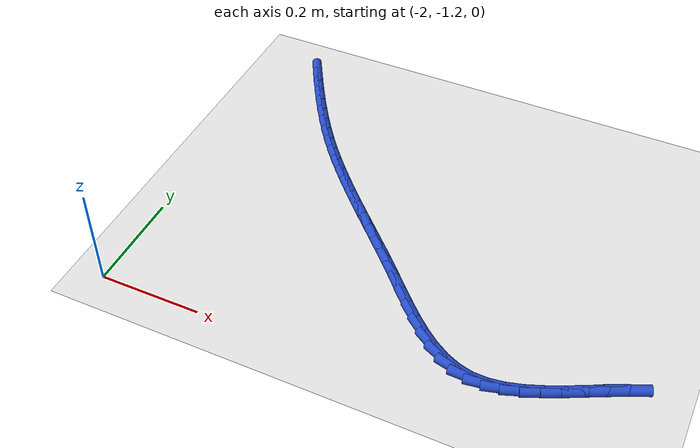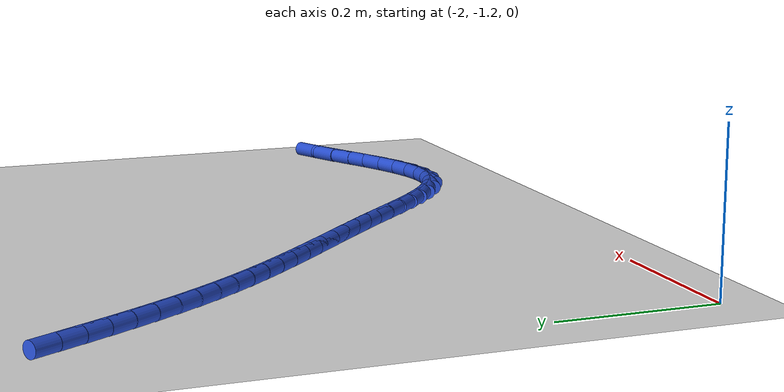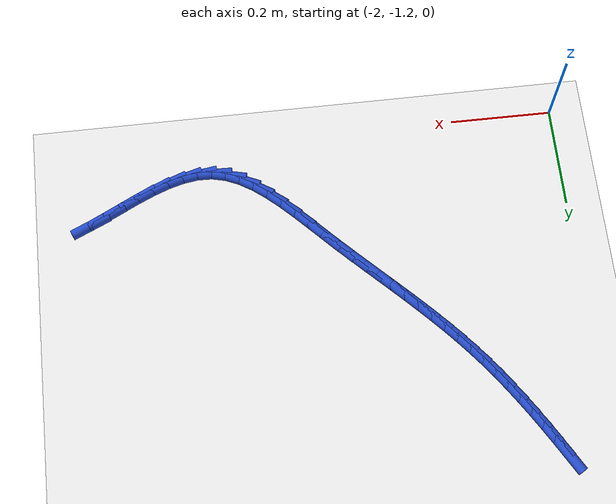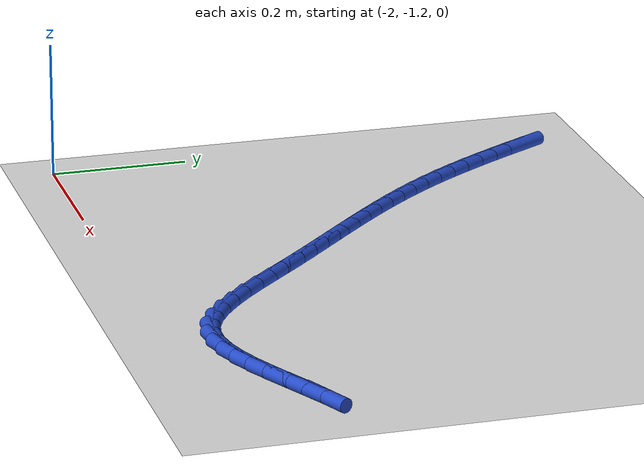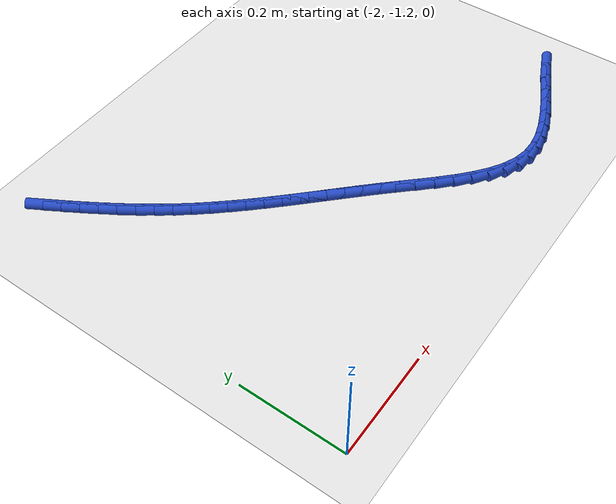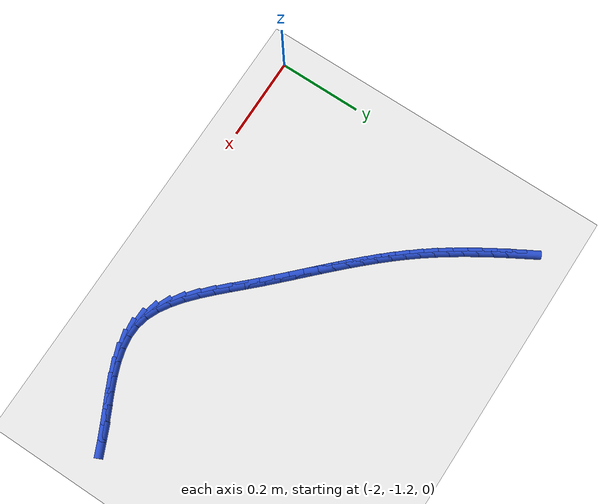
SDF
<sdf version="1.6">
 <world name="default">
  <model name="ground_plane">
   <static>1</static>
   <link name="link">
    <collision name="collision">
     <geometry><plane><normal>0 0 1</normal><size>100 100</size></plane></geometry>
     <surface><friction><ode><mu>100</mu><mu2>50</mu2></ode></friction></surface>
    </collision>
    <visual name="visual">
     <cast_shadows>0</cast_shadows>
     <geometry><plane><normal>0 0 1</normal><size>100 100</size></plane></geometry>
     <material>
      <script><uri>file://media/materials/scripts/gazebo.material</uri><name>Gazebo/WhiteGlow</name></script>
     </material>
    </visual>
   </link>
  </model>
  <model name="line">
   <link name="link_124">
    <pose>-1.9135966309874082 -0.502934036705215 0.01 0 1.57 -1.0475070568985723</pose>
    <collision name="collision">
     <geometry><cylinder><radius>0.01</radius><length>0.08</length></cylinder></geometry>
    </collision>
    <visual name="visual">
     <material>
      <script><name>Gazebo/Blue</name><uri>file://media/materials/scripts/gazebo.material</uri></script>
     </material>
     <geometry><cylinder><radius>0.01</radius><length>0.08</length></cylinder></geometry>
    </visual>
   </link>
   <link name="link_125">
    <pose>-1.8972765736320398 -0.5312214206681143 0.01 0 1.57 -1.0345594447354984</pose>
    <collision name="collision">
     <geometry><cylinder><radius>0.01</radius><length>0.08</length></cylinder></geometry>
    </collision>
    <visual name="visual">
     <material>
      <script><name>Gazebo/Blue</name><uri>file://media/materials/scripts/gazebo.material</uri></script>
     </material>
     <geometry><cylinder><radius>0.01</radius><length>0.08</length></cylinder></geometry>
    </visual>
   </link>
   <link name="link_126">
    <pose>-1.8804833890050574 -0.5594772751705258 0.01 0 1.57 -1.0190836249302626</pose>
    <collision name="collision">
     <geometry><cylinder><radius>0.01</radius><length>0.08</length></cylinder></geometry>
    </collision>
    <visual name="visual">
     <material>
      <script><name>Gazebo/Blue</name><uri>file://media/materials/scripts/gazebo.material</uri></script>
     </material>
     <geometry><cylinder><radius>0.01</radius><length>0.08</length></cylinder></geometry>
    </visual>
   </link>
   <link name="link_127">
    <pose>-1.863198707217481 -0.587561251308733 0.01 0 1.57 -1.0009563373993409</pose>
    <collision name="collision">
     <geometry><cylinder><radius>0.01</radius><length>0.08</length></cylinder></geometry>
    </collision>
    <visual name="visual">
     <material>
      <script><name>Gazebo/Blue</name><uri>file://media/materials/scripts/gazebo.material</uri></script>
     </material>
     <geometry><cylinder><radius>0.01</radius><length>0.08</length></cylinder></geometry>
    </visual>
   </link>
   <link name="link_128">
    <pose>-1.8454041583803287 -0.6153330001790173 0.01 0 1.57 -0.9800112402686961</pose>
    <collision name="collision">
     <geometry><cylinder><radius>0.01</radius><length>0.08</length></cylinder></geometry>
    </collision>
    <visual name="visual">
     <material>
      <script><name>Gazebo/Blue</name><uri>file://media/materials/scripts/gazebo.material</uri></script>
     </material>
     <geometry><cylinder><radius>0.01</radius><length>0.08</length></cylinder></geometry>
    </visual>
   </link>
   <link name="link_129">
    <pose>-1.827081372604622 -0.6426521728776615 0.01 0 1.57 -0.9560383326005625</pose>
    <collision name="collision">
     <geometry><cylinder><radius>0.01</radius><length>0.08</length></cylinder></geometry>
    </collision>
    <visual name="visual">
     <material>
      <script><name>Gazebo/Blue</name><uri>file://media/materials/scripts/gazebo.material</uri></script>
     </material>
     <geometry><cylinder><radius>0.01</radius><length>0.08</length></cylinder></geometry>
    </visual>
   </link>
   <link name="link_130">
    <pose>-1.80821198000138 -0.669378420500948 0.01 0 1.57 -0.9287830841033715</pose>
    <collision name="collision">
     <geometry><cylinder><radius>0.01</radius><length>0.08</length></cylinder></geometry>
    </collision>
    <visual name="visual">
     <material>
      <script><name>Gazebo/Blue</name><uri>file://media/materials/scripts/gazebo.material</uri></script>
     </material>
     <geometry><cylinder><radius>0.01</radius><length>0.08</length></cylinder></geometry>
    </visual>
   </link>
   <link name="link_131">
    <pose>-1.7887776106816224 -0.6953713941451586 0.01 0 1.57 -0.8989156136470994</pose>
    <collision name="collision">
     <geometry><cylinder><radius>0.01</radius><length>0.08</length></cylinder></geometry>
    </collision>
    <visual name="visual">
     <material>
      <script><name>Gazebo/Blue</name><uri>file://media/materials/scripts/gazebo.material</uri></script>
     </material>
     <geometry><cylinder><radius>0.01</radius><length>0.08</length></cylinder></geometry>
    </visual>
   </link>
   <link name="link_132">
    <pose>-1.768766905410925 -0.7205319675906243 0.01 0 1.57 -0.8708459982777562</pose>
    <collision name="collision">
     <geometry><cylinder><radius>0.01</radius><length>0.08</length></cylinder></geometry>
    </collision>
    <visual name="visual">
     <material>
      <script><name>Gazebo/Blue</name><uri>file://media/materials/scripts/gazebo.material</uri></script>
     </material>
     <geometry><cylinder><radius>0.01</radius><length>0.08</length></cylinder></geometry>
    </visual>
   </link>
   <link name="link_133">
    <pose>-1.74820086511964 -0.7449512925493137 0.01 0 1.57 -0.8461723928128537</pose>
    <collision name="collision">
     <geometry><cylinder><radius>0.01</radius><length>0.08</length></cylinder></geometry>
    </collision>
    <visual name="visual">
     <material>
      <script><name>Gazebo/Blue</name><uri>file://media/materials/scripts/gazebo.material</uri></script>
     </material>
     <geometry><cylinder><radius>0.01</radius><length>0.08</length></cylinder></geometry>
    </visual>
   </link>
   <link name="link_134">
    <pose>-1.7271098213490412 -0.7687753847723375 0.01 0 1.57 -0.8251712590265017</pose>
    <collision name="collision">
     <geometry><cylinder><radius>0.01</radius><length>0.08</length></cylinder></geometry>
    </collision>
    <visual name="visual">
     <material>
      <script><name>Gazebo/Blue</name><uri>file://media/materials/scripts/gazebo.material</uri></script>
     </material>
     <geometry><cylinder><radius>0.01</radius><length>0.08</length></cylinder></geometry>
    </visual>
   </link>
   <link name="link_135">
    <pose>-1.7055241065197801 -0.7921502651815617 0.01 0 1.57 -0.8080360637903273</pose>
    <collision name="collision">
     <geometry><cylinder><radius>0.01</radius><length>0.08</length></cylinder></geometry>
    </collision>
    <visual name="visual">
     <material>
      <script><name>Gazebo/Blue</name><uri>file://media/materials/scripts/gazebo.material</uri></script>
     </material>
     <geometry><cylinder><radius>0.01</radius><length>0.08</length></cylinder></geometry>
    </visual>
   </link>
   <link name="link_136">
    <pose>-1.6834740530525085 -0.8152219546988534 0.01 0 1.57 -0.7948796707596245</pose>
    <collision name="collision">
     <geometry><cylinder><radius>0.01</radius><length>0.08</length></cylinder></geometry>
    </collision>
    <visual name="visual">
     <material>
      <script><name>Gazebo/Blue</name><uri>file://media/materials/scripts/gazebo.material</uri></script>
     </material>
     <geometry><cylinder><radius>0.01</radius><length>0.08</length></cylinder></geometry>
    </visual>
   </link>
   <link name="link_137">
    <pose>-1.6609899933678802 -0.8381364742460793 0.01 0 1.57 -0.7857396493133958</pose>
    <collision name="collision">
     <geometry><cylinder><radius>0.01</radius><length>0.08</length></cylinder></geometry>
    </collision>
    <visual name="visual">
     <material>
      <script><name>Gazebo/Blue</name><uri>file://media/materials/scripts/gazebo.material</uri></script>
     </material>
     <geometry><cylinder><radius>0.01</radius><length>0.08</length></cylinder></geometry>
    </visual>
   </link>
   <link name="link_138">
    <pose>-1.638102259886546 -0.8610398447451063 0.01 0 1.57 -0.7805853329389117</pose>
    <collision name="collision">
     <geometry><cylinder><radius>0.01</radius><length>0.08</length></cylinder></geometry>
    </collision>
    <visual name="visual">
     <material>
      <script><name>Gazebo/Blue</name><uri>file://media/materials/scripts/gazebo.material</uri></script>
     </material>
     <geometry><cylinder><radius>0.01</radius><length>0.08</length></cylinder></geometry>
    </visual>
   </link>
   <link name="link_139">
    <pose>-1.6148411850291602 -0.8840780871178004 0.01 0 1.57 -0.779325580396458</pose>
    <collision name="collision">
     <geometry><cylinder><radius>0.01</radius><length>0.08</length></cylinder></geometry>
    </collision>
    <visual name="visual">
     <material>
      <script><name>Gazebo/Blue</name><uri>file://media/materials/scripts/gazebo.material</uri></script>
     </material>
     <geometry><cylinder><radius>0.01</radius><length>0.08</length></cylinder></geometry>
    </visual>
   </link>
   <link name="link_140">
    <pose>-1.591237101216374 -0.9073972222860284 0.01 0 1.57 -0.7818165295264585</pose>
    <collision name="collision">
     <geometry><cylinder><radius>0.01</radius><length>0.08</length></cylinder></geometry>
    </collision>
    <visual name="visual">
     <material>
      <script><name>Gazebo/Blue</name><uri>file://media/materials/scripts/gazebo.material</uri></script>
     </material>
     <geometry><cylinder><radius>0.01</radius><length>0.08</length></cylinder></geometry>
    </visual>
   </link>
   <link name="link_141">
    <pose>-1.5673203408688403 -0.9311432711716574 0.01 0 1.57 -0.7878689701479262</pose>
    <collision name="collision">
     <geometry><cylinder><radius>0.01</radius><length>0.08</length></cylinder></geometry>
    </collision>
    <visual name="visual">
     <material>
      <script><name>Gazebo/Blue</name><uri>file://media/materials/scripts/gazebo.material</uri></script>
     </material>
     <geometry><cylinder><radius>0.01</radius><length>0.08</length></cylinder></geometry>
    </visual>
   </link>
   <link name="link_142">
    <pose>-1.543121236407211 -0.9554622546965534 0.01 0 1.57 -0.7972552382055903</pose>
    <collision name="collision">
     <geometry><cylinder><radius>0.01</radius><length>0.08</length></cylinder></geometry>
    </collision>
    <visual name="visual">
     <material>
      <script><name>Gazebo/Blue</name><uri>file://media/materials/scripts/gazebo.material</uri></script>
     </material>
     <geometry><cylinder><radius>0.01</radius><length>0.08</length></cylinder></geometry>
    </visual>
   </link>
   <link name="link_143">
    <pose>-1.518670120252139 -0.9805001937825835 0.01 0 1.57 -0.8063526784655833</pose>
    <collision name="collision">
     <geometry><cylinder><radius>0.01</radius><length>0.08</length></cylinder></geometry>
    </collision>
    <visual name="visual">
     <material>
      <script><name>Gazebo/Blue</name><uri>file://media/materials/scripts/gazebo.material</uri></script>
     </material>
     <geometry><cylinder><radius>0.01</radius><length>0.08</length></cylinder></geometry>
    </visual>
   </link>
   <link name="link_144">
    <pose>-1.4939833365621904 -1.006243878172441 0.01 0 1.57 -0.8004874402331852</pose>
    <collision name="collision">
     <geometry><cylinder><radius>0.01</radius><length>0.08</length></cylinder></geometry>
    </collision>
    <visual name="visual">
     <material>
      <script><name>Gazebo/Blue</name><uri>file://media/materials/scripts/gazebo.material</uri></script>
     </material>
     <geometry><cylinder><radius>0.01</radius><length>0.08</length></cylinder></geometry>
    </visual>
   </link>
   <link name="link_145">
    <pose>-1.469015451047204 -1.0319768611969138 0.01 0 1.57 -0.7754287948697701</pose>
    <collision name="collision">
     <geometry><cylinder><radius>0.01</radius><length>0.08</length></cylinder></geometry>
    </collision>
    <visual name="visual">
     <material>
      <script><name>Gazebo/Blue</name><uri>file://media/materials/scripts/gazebo.material</uri></script>
     </material>
     <geometry><cylinder><radius>0.01</radius><length>0.08</length></cylinder></geometry>
    </visual>
   </link>
   <link name="link_146">
    <pose>-1.4437039799580225 -1.0567886187922066 0.01 0 1.57 -0.7292421271719759</pose>
    <collision name="collision">
     <geometry><cylinder><radius>0.01</radius><length>0.08</length></cylinder></geometry>
    </collision>
    <visual name="visual">
     <material>
      <script><name>Gazebo/Blue</name><uri>file://media/materials/scripts/gazebo.material</uri></script>
     </material>
     <geometry><cylinder><radius>0.01</radius><length>0.08</length></cylinder></geometry>
    </visual>
   </link>
   <link name="link_147">
    <pose>-1.4179864389899126 -1.0797686205703032 0.01 0 1.57 -0.6579604696418994</pose>
    <collision name="collision">
     <geometry><cylinder><radius>0.01</radius><length>0.08</length></cylinder></geometry>
    </collision>
    <visual name="visual">
     <material>
      <script><name>Gazebo/Blue</name><uri>file://media/materials/scripts/gazebo.material</uri></script>
     </material>
     <geometry><cylinder><radius>0.01</radius><length>0.08</length></cylinder></geometry>
    </visual>
   </link>
   <link name="link_148">
    <pose>-1.3918003438381406 -1.100006336143185 0.01 0 1.57 -0.5555437339928079</pose>
    <collision name="collision">
     <geometry><cylinder><radius>0.01</radius><length>0.08</length></cylinder></geometry>
    </collision>
    <visual name="visual">
     <material>
      <script><name>Gazebo/Blue</name><uri>file://media/materials/scripts/gazebo.material</uri></script>
     </material>
     <geometry><cylinder><radius>0.01</radius><length>0.08</length></cylinder></geometry>
    </visual>
   </link>
   <link name="link_149">
    <pose>-1.3650832101979733 -1.1165912351228353 0.01 0 1.57 -0.4146560508710341</pose>
    <collision name="collision">
     <geometry><cylinder><radius>0.01</radius><length>0.08</length></cylinder></geometry>
    </collision>
    <visual name="visual">
     <material>
      <script><name>Gazebo/Blue</name><uri>file://media/materials/scripts/gazebo.material</uri></script>
     </material>
     <geometry><cylinder><radius>0.01</radius><length>0.08</length></cylinder></geometry>
    </visual>
   </link>
   <link name="link_150">
    <pose>-1.3377725537646767 -1.1286127871212357 0.01 0 1.57 -0.23020190001958032</pose>
    <collision name="collision">
     <geometry><cylinder><radius>0.01</radius><length>0.08</length></cylinder></geometry>
    </collision>
    <visual name="visual">
     <material>
      <script><name>Gazebo/Blue</name><uri>file://media/materials/scripts/gazebo.material</uri></script>
     </material>
     <geometry><cylinder><radius>0.01</radius><length>0.08</length></cylinder></geometry>
    </visual>
   </link>
   <link name="link_151">
    <pose>-1.3098062973083933 -1.1351668566622308 0.01 0 1.57 -0.02725175203925976</pose>
    <collision name="collision">
     <geometry><cylinder><radius>0.01</radius><length>0.08</length></cylinder></geometry>
    </collision>
    <visual name="visual">
     <material>
      <script><name>Gazebo/Blue</name><uri>file://media/materials/scripts/gazebo.material</uri></script>
     </material>
     <geometry><cylinder><radius>0.01</radius><length>0.08</length></cylinder></geometry>
    </visual>
   </link>
   <link name="link_152">
    <pose>-1.2811604548171982 -1.1359476993680189 0.01 0 1.57 0.14313817414292496</pose>
    <collision name="collision">
     <geometry><cylinder><radius>0.01</radius><length>0.08</length></cylinder></geometry>
    </collision>
    <visual name="visual">
     <material>
      <script><name>Gazebo/Blue</name><uri>file://media/materials/scripts/gazebo.material</uri></script>
     </material>
     <geometry><cylinder><radius>0.01</radius><length>0.08</length></cylinder></geometry>
    </visual>
   </link>
   <link name="link_153">
    <pose>-1.2518796659302678 -1.1317276403205387 0.01 0 1.57 0.27219683219702284</pose>
    <collision name="collision">
     <geometry><cylinder><radius>0.01</radius><length>0.08</length></cylinder></geometry>
    </collision>
    <visual name="visual">
     <material>
      <script><name>Gazebo/Blue</name><uri>file://media/materials/scripts/gazebo.material</uri></script>
     </material>
     <geometry><cylinder><radius>0.01</radius><length>0.08</length></cylinder></geometry>
    </visual>
   </link>
   <link name="link_154">
    <pose>-1.222015755875715 -1.1233918860659753 0.01 0 1.57 0.363608765102685</pose>
    <collision name="collision">
     <geometry><cylinder><radius>0.01</radius><length>0.08</length></cylinder></geometry>
    </collision>
    <visual name="visual">
     <material>
      <script><name>Gazebo/Blue</name><uri>file://media/materials/scripts/gazebo.material</uri></script>
     </material>
     <geometry><cylinder><radius>0.01</radius><length>0.08</length></cylinder></geometry>
    </visual>
   </link>
   <link name="link_155">
    <pose>-1.1916205498816514 -1.1118256431505116 0.01 0 1.57 0.423336505302433</pose>
    <collision name="collision">
     <geometry><cylinder><radius>0.01</radius><length>0.08</length></cylinder></geometry>
    </collision>
    <visual name="visual">
     <material>
      <script><name>Gazebo/Blue</name><uri>file://media/materials/scripts/gazebo.material</uri></script>
     </material>
     <geometry><cylinder><radius>0.01</radius><length>0.08</length></cylinder></geometry>
    </visual>
   </link>
   <link name="link_156">
    <pose>-1.160745873176191 -1.0979141181203325 0.01 0 1.57 0.4564773302902623</pose>
    <collision name="collision">
     <geometry><cylinder><radius>0.01</radius><length>0.08</length></cylinder></geometry>
    </collision>
    <visual name="visual">
     <material>
      <script><name>Gazebo/Blue</name><uri>file://media/materials/scripts/gazebo.material</uri></script>
     </material>
     <geometry><cylinder><radius>0.01</radius><length>0.08</length></cylinder></geometry>
    </visual>
   </link>
   <link name="link_157">
    <pose>-1.1294435509874439 -1.0825425175216208 0.01 0 1.57 0.4663561690534464</pose>
    <collision name="collision">
     <geometry><cylinder><radius>0.01</radius><length>0.08</length></cylinder></geometry>
    </collision>
    <visual name="visual">
     <material>
      <script><name>Gazebo/Blue</name><uri>file://media/materials/scripts/gazebo.material</uri></script>
     </material>
     <geometry><cylinder><radius>0.01</radius><length>0.08</length></cylinder></geometry>
    </visual>
   </link>
   <link name="link_158">
    <pose>-1.097765408543525 -1.066596047900562 0.01 0 1.57 0.4544832554940753</pose>
    <collision name="collision">
     <geometry><cylinder><radius>0.01</radius><length>0.08</length></cylinder></geometry>
    </collision>
    <visual name="visual">
     <material>
      <script><name>Gazebo/Blue</name><uri>file://media/materials/scripts/gazebo.material</uri></script>
     </material>
     <geometry><cylinder><radius>0.01</radius><length>0.08</length></cylinder></geometry>
    </visual>
   </link>
   <link name="link_159">
    <pose>-1.0657632710725449 -1.0509599158033396 0.01 0 1.57 0.4207171032670548</pose>
    <collision name="collision">
     <geometry><cylinder><radius>0.01</radius><length>0.08</length></cylinder></geometry>
    </collision>
    <visual name="visual">
     <material>
      <script><name>Gazebo/Blue</name><uri>file://media/materials/scripts/gazebo.material</uri></script>
     </material>
     <geometry><cylinder><radius>0.01</radius><length>0.08</length></cylinder></geometry>
    </visual>
   </link>
  </model>
 </world>
</sdf>
